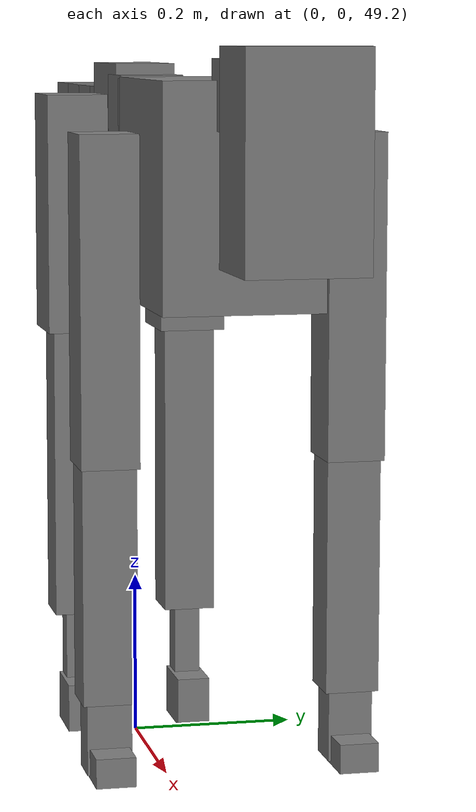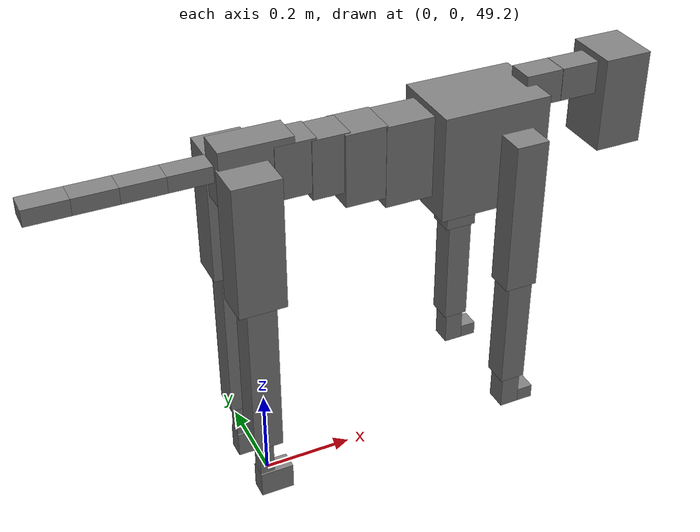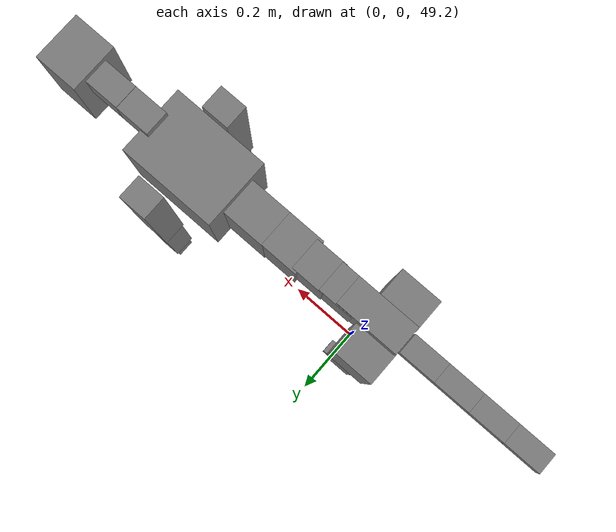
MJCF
<mujoco model="dog">

    <default>
        <joint armature="0.02" stiffness="1" damping="0.2" limited="true"/>
        <geom condim="3" friction="1 0.05 0.05" margin="0.01"/>
        <motor ctrllimited="true" ctrlrange="-1.0 1.0" forcelimited="true" gear="50"/>
    </default>

    <compiler inertiafromgeom="true" angle="radian"/>

    <option timestep="0.016" iterations="50" tolerance="1e-10" solver="Newton" jacobian="dense" cone="pyramidal"/>

    <size nconmax="20000" njmax="60000" nstack="5000000"/>
    <visual>
        <map force="0.1" zfar="30"/>
        <rgba haze="0.15 0.25 0.35 1"/>
        <quality shadowsize="2048"/>
        <global offwidth="800" offheight="800"/>
    </visual>

    <asset>
        <texture type="skybox" builtin="gradient" rgb1="0.3 0.5 0.7" rgb2="0 0 0" width="512" height="512"/>
        <texture name="texplane" type="2d" builtin="checker" rgb1=".2 .3 .4" rgb2=".1 0.15 0.2" width="512" height="512"
                 mark="cross" markrgb=".8 .8 .8"/>
        <texture name="texgeom" type="cube" builtin="flat" mark="cross" width="127" height="1278" rgb1="0.8 0.6 0.4"
                 rgb2="0.8 0.6 0.4" markrgb="1 1 1" random="0.01"/>

        <material name="matplane" reflectance="0.3" texture="texplane" texrepeat="1 1" texuniform="true"/>
        <material name="matgeom" texture="texgeom" texuniform="true" rgba="0.8 0.6 .4 1"/>
    </asset>

    <worldbody>
        <geom name="floor" pos="0 0 0" size="0 0 .25" type="plane" material="matplane" condim="3"/>

        <light directional="false" diffuse=".2 .2 .2" specular="0 0 0" pos="0 0 5" dir="0 0 -1" castshadow="false"/>
        <light mode="targetbodycom" target="torso" directional="false" diffuse=".8 .8 .8" specular="0.3 0.3 0.3"
               pos="0 0 4.0" dir="0 0 -1"/>

        <body name="root" pos="0 0 50">
            <freejoint name="root_1"/>
            <geom type="box" pos="0 0 -0.02" size="0.0774  0.0358  0.063" density="2030"/>

            <body name="spine1" pos="0.054 0 0">
                <joint name="spine1_y" axis="0 1 0" range="0 0.7" limited="true"/>
                <geom type="box" pos="0.02375 0 -0.03" size="0.04375  0.0375  0.05985" density="2030"/>

                <body name="spine2" pos="0.0612 0 0">
                    <joint name="spine2_y" axis="0 1 0" range="-0.15 0.15" limited="true"/>
                    <geom type="box" pos="0.03555  0  -0.04" size="0.04055  0.039  0.06615" density="2030"/>

                    <body name="spine3" pos="0.0730 0 0">
                        <joint name="spine3_y" axis="0 1 0" range="-0.15 0.15" limited="true"/>
                        <geom type="box" pos="0.03555  0  -0.057" size="0.04555  0.0445  0.081" density="2030"/>

                        <body name="spine4" pos="0.0780 0 0">
                            <joint name="spine4_y" axis="0 1 0" range="-0.15 0.15" limited="true"/>
                            <geom type="box" pos="0.05265  0  -0.07" size="0.05265  0.045  0.09135" density="2030"/>

                            <body name="torso" pos="0.1082 0 0">
                                <joint name="torso_y" axis="0 1 0" range="-0.15 0.15" limited="true"/>
                                <geom type="box" pos="0.11925  0  -0.085" size="0.11925  0.085  0.11745"
                                      density="2030"/>

                                <body name="neck1" pos="0.2160  0   0.0180">
                                    <joint name="neck1_y" axis="0 1 0" range="-1.2  -1" limited="true"/>
                                    <geom type="box" pos="0.0423  0  0" size="0.0423  0.03  0.036" density="2325"/>

                                    <body name="neck2" pos="0.0853  0  0">
                                        <joint name="neck2_y" axis="0 1 0" range="0.1  0" limited="true"/>
                                        <geom type="box" pos="0.0423  0  0" size="0.0423  0.03  0.036" density="2325"/>

                                        <body name="head" pos="0.0853  0  0">
                                            <joint name="head_y" axis="0 1 0" range="-0.3  -0.2" limited="true"/>
                                            <geom type="box" pos="0.0531  0  -0.055" size="0.0531  0.06  0.1044"
                                                  density="4030"/>

                                        </body>
                                    </body>
                                </body>

                                <body name="front_shoulder" pos="0.156  0   -0.0480">
                                    <joint name="front_shoulder_y" axis="0 1 0" range="-1 1.5" limited="true"/>
                                    <geom type="box" pos="0 0.13 -0.1447" size="0.0359  0.0307  0.1713" density="1158"/>
                                    <geom type="box" pos="0 -0.13 -0.1447" size="0.0359  0.0307  0.1713"
                                          density="1158"/>

                                    <body name="front_elbow" pos="0  0  -0.2894">
                                        <joint name="front_elbow_y" axis="0 1 0" range="-2 0" limited="true"/>
                                        <geom type="box" pos="0 0.13 -0.1383" size="0.0280  0.0287  0.1383"
                                              density="1081"/>
                                        <geom type="box" pos="0 -0.13 -0.1383" size="0.0280  0.0287  0.1383"
                                              density="1081"/>

                                        <body name="front_wrist" pos="0  0  -0.2766">
                                            <joint name="front_wrist_y" axis="0 1 0" range="-0.2 0" limited="true"/>
                                            <geom type="box" pos="0 0.13 -0.0314" size="0.0213  0.0237  0.0446"
                                                  density="1664"/>
                                            <geom type="box" pos="0 -0.13 -0.0314" size="0.0213  0.0237  0.0446"
                                                  density="1664"/>

                                            <body name="front_finger_end" pos="0  0  -0.0628">
                                                <joint name="front_finger_y" axis="0 1 0" range="-0.4 1"
                                                       limited="true"/>
                                                <geom type="box" pos="0.0210  0.13  -0.0007"
                                                      size="0.0385  0.0210  0.0157" density="1515"/>
                                                <geom type="box" pos="0.0210  -0.13  -0.0007"
                                                      size="0.0385  0.0210  0.0157" density="1515"/>

                                            </body>

                                        </body>
                                    </body>
                                </body>

                            </body>
                        </body>
                    </body>
                </body>
            </body>

            <body name="back_hip" pos="-0.03 0 -0.018">
                <joint name="back_hip_y" axis="0 1 0" range="-1.5 0.3" limited="true"/>
                <geom type="box" pos="0 0.07 -0.1233" size="0.0514  0.0403  0.1461" density="1154"/>
                <geom type="box" pos="0 -0.07 -0.1233" size="0.0514  0.0403  0.1461" density="1154"/>

                <body name="back_knee" pos="0  0  -0.2467">
                    <joint name="back_knee_y" axis="0 1 0" range="0 2.8" limited="true"/>
                    <geom type="box" pos="0 0.07 -0.1833" size="0.0320  0.0316  0.1989" density="1227"/>
                    <geom type="box" pos="0 -0.07 -0.1833" size="0.0320  0.0316  0.1989" density="1227"/>

                    <body name="back_ankle" pos="0  0  -0.3667">
                        <joint name="back_ankle_y" axis="0 1 0" range="-2.2 0" limited="true"/>
                        <geom type="box" pos="0 0.07 -0.0579" size="0.0159  0.0159  0.0692" density="1284"/>
                        <geom type="box" pos="0 -0.07 -0.0579" size="0.0159  0.0159  0.0692" density="1284"/>

                        <body name="back_toe_end" pos="0  0  -0.1159">
                            <joint name="back_toe_y" axis="0 1 0" range="-0.4 1" limited="true"/>
                            <geom type="box" pos="0.0202  0.07  -0.0147" size="0.0370  0.0202  0.0297" density="1515"/>
                            <geom type="box" pos="0.0202  -0.07  -0.0147" size="0.0370  0.0202  0.0297" density="1515"/>

                        </body>
                    </body>
                </body>
            </body>

            <body name="tail1" pos="-0.074 0 -0.006">
                <joint name="tail1_y" axis="0 1 0" range="-0.2 0.2" limited="true"/>
                <geom type="box" pos="-0.0536  0  0" size="0.045  0.025  0.0175" density="1587"/>

                <body name="tail2" pos="-0.09 0 0">
                    <joint name="tail2_y" axis="0 1 0" range="-0.2 0.2" limited="true"/>
                    <geom type="box" pos="-0.0536  0  0" size="0.045  0.025  0.0175" density="1587"/>

                    <body name="tail3" pos="-0.09 0 0">
                        <joint name="tail3_y" axis="0 1 0" range="-0.2 0.2" limited="true"/>
                        <geom type="box" pos="-0.0536  0  0" size="0.045  0.025  0.0175" density="1587"/>

                        <body name="tail4" pos="-0.09 0 0">
                            <joint name="tail4_y" axis="0 1 0" range="-0.2 0.2" limited="true"/>
                            <geom type="box" pos="-0.0536  0  0" size="0.045  0.025  0.0175" density="1587"/>

                        </body>
                    </body>
                </body>
            </body>
        </body>
    </worldbody>

    <actuator>
        <motor joint="spine1_y" forcerange="-150 150     "/>
        <motor joint="spine2_y" forcerange="-150 150     "/>
        <motor joint="spine3_y" forcerange="-150 150     "/>
        <motor joint="spine4_y" forcerange="-150 150     "/>
        <motor joint="torso_y" forcerange="-150 150     "/>
        <motor joint="neck1_y" forcerange="-100 100       "/>
        <motor joint="neck2_y" forcerange="-100 100       "/>
        <motor joint="head_y" forcerange="-150 150       "/>
        <motor joint="front_shoulder_y" forcerange="-155.54 149.29"/>
        <motor joint="front_elbow_y" forcerange="-132.93 175.56"/>
        <motor joint="front_wrist_y" forcerange="-94.59 95.07"/>
        <motor joint="front_finger_y" forcerange="-47.80 24.32"/>
        <motor joint="back_hip_y" forcerange="-359.99 377.32"/>
        <motor joint="back_knee_y" forcerange="-341.87 317.47"/>
        <motor joint="back_angle_y" forcerange="-71.23 82.71"/>
        <motor joint="back_toe_y" forcerange="-26.45 55.09"/>
        <motor joint="tail1_y" forcerange="-50 50     "/>
        <motor joint="tail2_y" forcerange="-50 50     "/>
        <motor joint="tail3_y" forcerange="-50 50     "/>
        <motor joint="tail4_y" forcerange="-50 50     "/>
    </actuator>
</mujoco>
